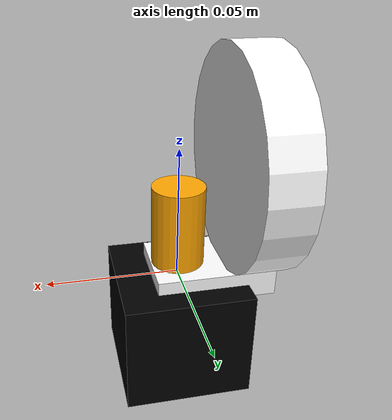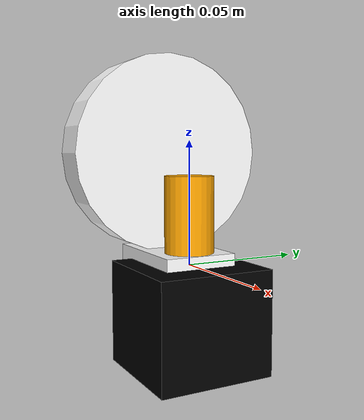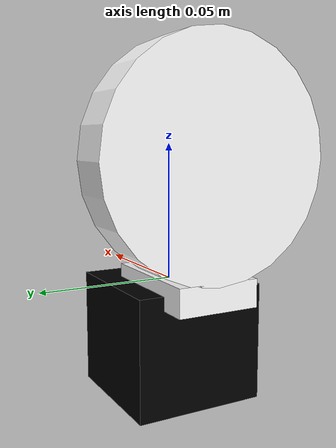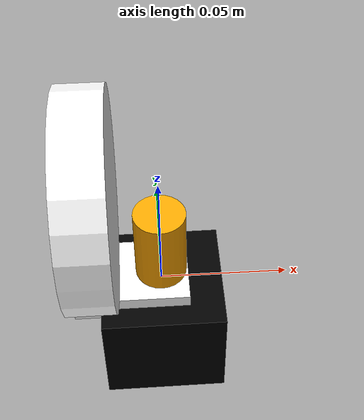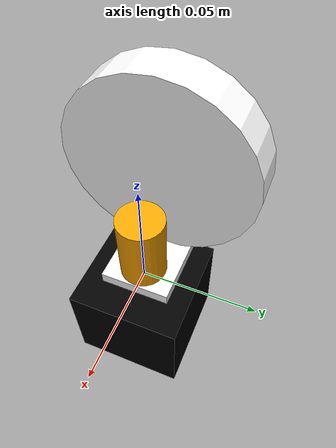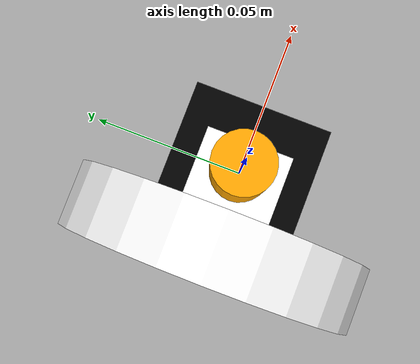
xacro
<?xml version="1.0"?>
<robot xmlns:xacro="http://www.ros.org/wiki/xacro">

    <xacro:include filename = "inertia_macros.xacro"/>

    <!-- Materials -->

    <material name="black">
        <color rgba="0 0 0 1"/>
    </material>

    <material name="orange">
        <color rgba="1 0.65 0 1"/>
    </material>

    <material name="white">
        <color rgba="1 1 1 1"/>
    </material>

    <material name="red">
        <color rgba="1 0 0 1"/>
    </material>

    <!-- Base Link-->

    <link name="base_link"> </link>

    <!-- Chassis Link -->

    <link name="chassis">
        <visual>
            <origin xyz="0 0 0.0215"/>
            <geometry>
                <box size="0.048 0.048 0.043"/>
            </geometry>
            <material name="black"/>
        </visual>
        <collision>
            <origin xyz="0 0 0.0215"/>
            <geometry>
                <box size="0.048 0.048 0.043"/>
            </geometry>
        </collision>
        <xacro:inertial_box mass = "0.5" x = "0.048" y = "0.048" z = "0.043">
            <origin xyz = "0 0 0.0215" rpy = "0 0 0"/>
        </xacro:inertial_box>
    </link>

    <gazebo reference="chassis">
        <material>
            Gazebo/Black
        </material>
    </gazebo>

    <!-- Chassis/Base Joint -->

    <joint name="chassis_joint" type="fixed">
        <parent link="base_link"/>
        <child link="chassis"/>
        <origin xyz="0 0 -0.043"/>
    </joint>

    <!-- Shaft Link -->

    <link name="shaft_link">
        <visual>
            <origin xyz="0 0 0.018"/>
            <geometry>
                <cylinder radius="0.01" length="0.036"/>
            </geometry>
            <material name="orange"/>
        </visual>
        <collision>
            <origin xyz="0 0 0.018"/>
            <geometry>
                <cylinder radius="0.01" length="0.036"/>
            </geometry>
        </collision>
        <xacro:inertial_cylinder mass = "0.1" length = "0.036" radius = "0.01">
            <origin xyz = "0 0 0.018" rpy = "0 0 0"/>
        </xacro:inertial_cylinder>
    </link>

    <gazebo reference="shaft_link">
        <material>
            Gazebo/Orange
        </material>
    </gazebo>

    <!-- Shaft Joint -->

    <joint name="shaft_joint" type="continuous">
        <parent link="base_link"/>
        <child link="shaft_link"/>
        <origin xyz="0 0 0" rpy="0 0 0"/>
        <axis xyz=" 0 0 1"/>
    </joint>

    <!-- Bracket Link -->

    <link name="bracket_link">
        <visual>
            <origin xyz="-0.012 0 0"/>
            <geometry>
                <box size="0.045 0.03 0.01"/>
            </geometry>
            <material name="white"/>
        </visual>
        <collision>
            <origin xyz="-0.012 0 0"/>
            <geometry>
                <box size="0.045 0.03 0.01"/>
            </geometry>
        </collision>
        <xacro:inertial_box mass = "0.1" x = "0.045" y = "0.03" z = "0.01">
            <origin xyz = "0 -0.012 0" rpy = "0 0 0"/>
        </xacro:inertial_box>
        <visual>
            <origin xyz="-0.0255 0 0.045" rpy="0 ${pi/2} 0"/>
            <geometry>
                <cylinder radius="0.0415" length="0.018"/>
            </geometry>
            <material name="white"/>
        </visual>
        <collision>
            <origin xyz="-0.0255 0 0.045" rpy="0 ${pi/2} 0"/>
            <geometry>
                <cylinder radius="0.0415" length="0.018"/>
            </geometry>
        </collision>
        <xacro:inertial_cylinder mass = "0.1" length = "0.018" radius = "0.0415">
            <origin xyz = "-0.0255 0 0.045" rpy="0 ${pi/2} 0"/>
        </xacro:inertial_cylinder>
    </link>

    <gazebo reference="bracket_link">
        <material>
            Gazebo/White
        </material>
    </gazebo>

    <!-- Bracket Joint -->

    <joint name="bracket_joint" type="fixed">
        <parent link="shaft_link"/>
        <child link="bracket_link"/>
        <origin xyz="0 0 0" rpy="0 0 0"/>
    </joint>

</robot>

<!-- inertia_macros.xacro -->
<robot xmlns:xacro = "http://www.ros.org/wiki/xacro">

    <!-- Specify some standard inertial calculations https://en.wikipedia.org/wiki/List_of_moments_of_inertia -->
    <!-- These make use of xacro's mathematical functionality -->

    <xacro:macro name = "inertial_box" params = "mass x y z *origin">
        <inertial>
            <xacro:insert_block name = "origin"/>
            <mass value = "${mass}"/>
            <inertia ixx = "${(1/12) * mass * (y*y+z*z)}" ixy = "0.0" ixz = "0.0"
                    iyy = "${(1/12) * mass * (x*x+z*z)}" iyz = "0.0"
                    izz = "${(1/12) * mass * (x*x+y*y)}"/>
        </inertial>
    </xacro:macro>

    <xacro:macro name = "inertial_cylinder" params = "mass length radius *origin">
        <inertial>
            <xacro:insert_block name = "origin"/>
            <mass value = "${mass}"/>
            <inertia ixx = "${(1/12) * mass * (3*radius*radius + length*length)}" ixy = "0.0" ixz = "0.0"
                    iyy = "${(1/12) * mass * (3*radius*radius + length*length)}" iyz = "0.0"
                    izz = "${(1/2) * mass * (radius*radius)}"/>
        </inertial>
    </xacro:macro>

</robot>
